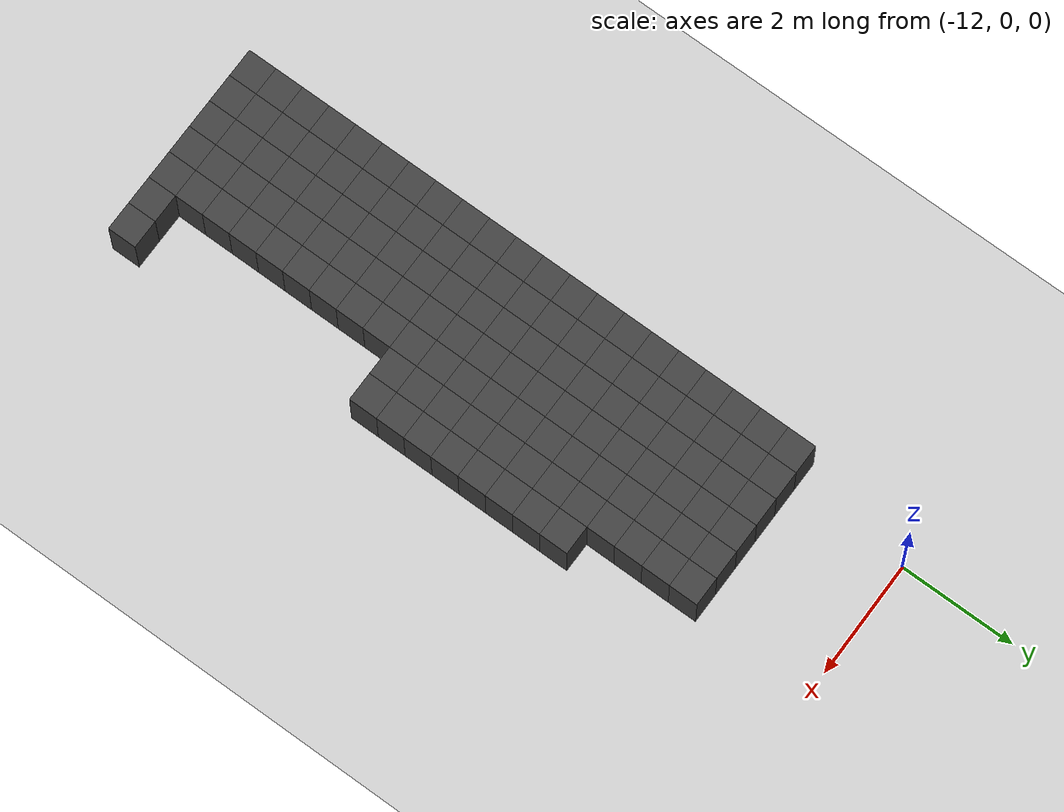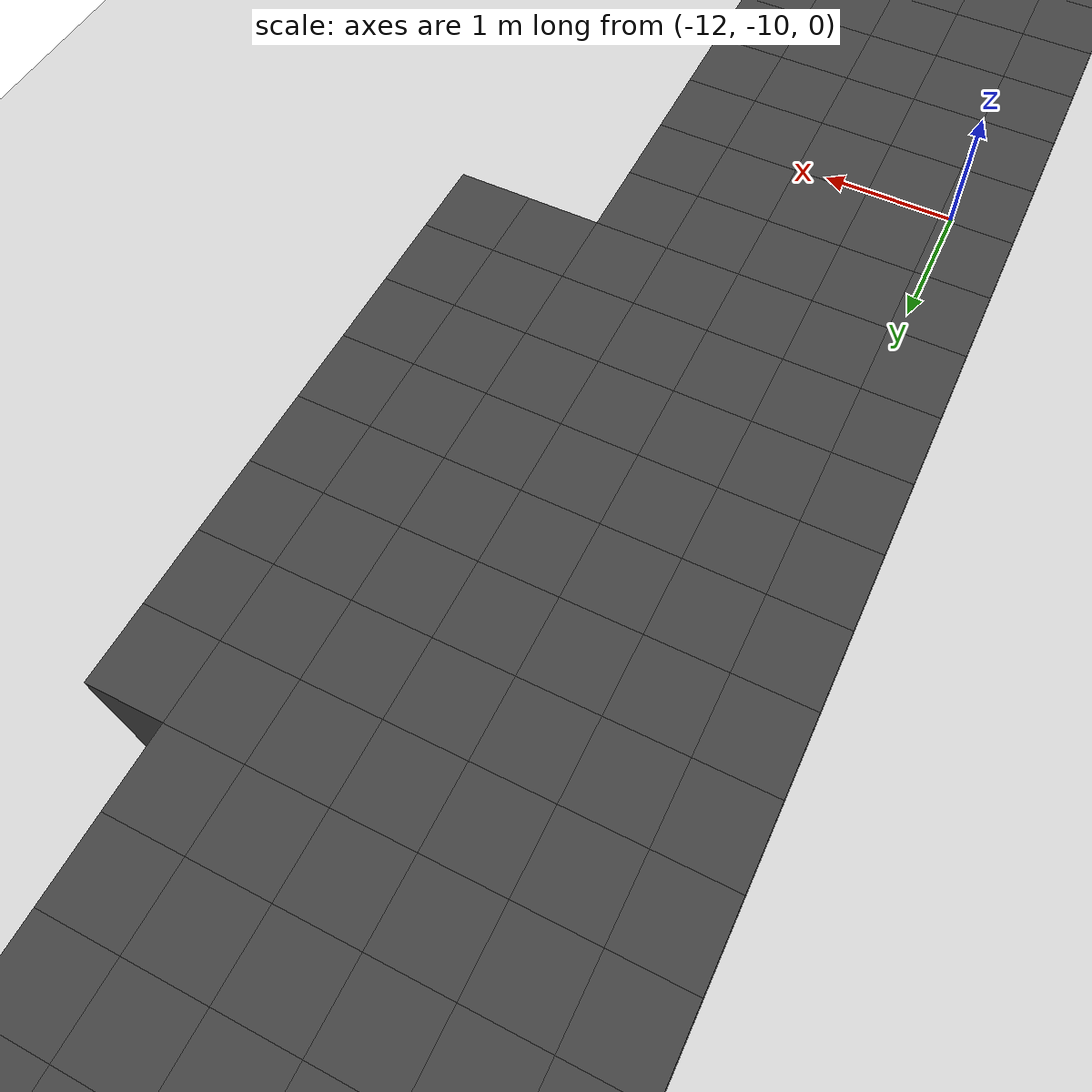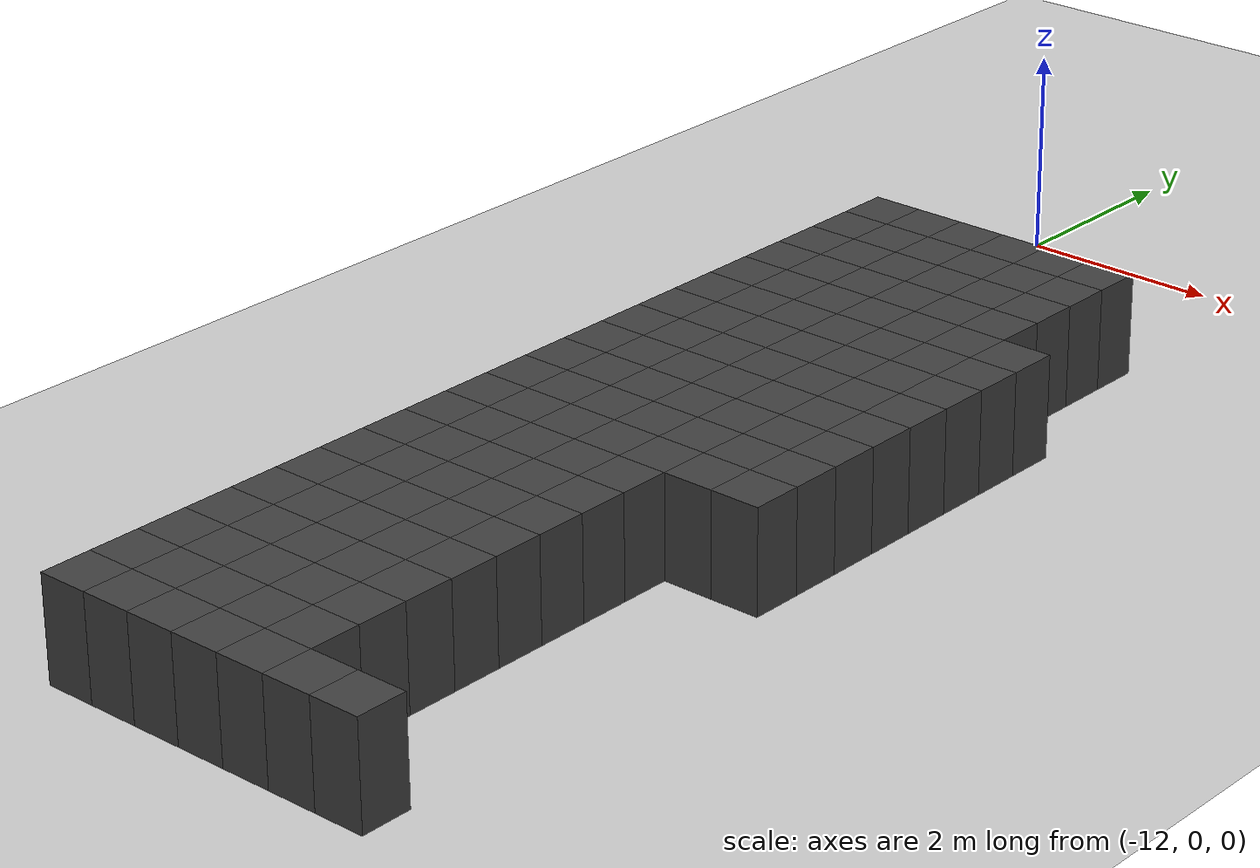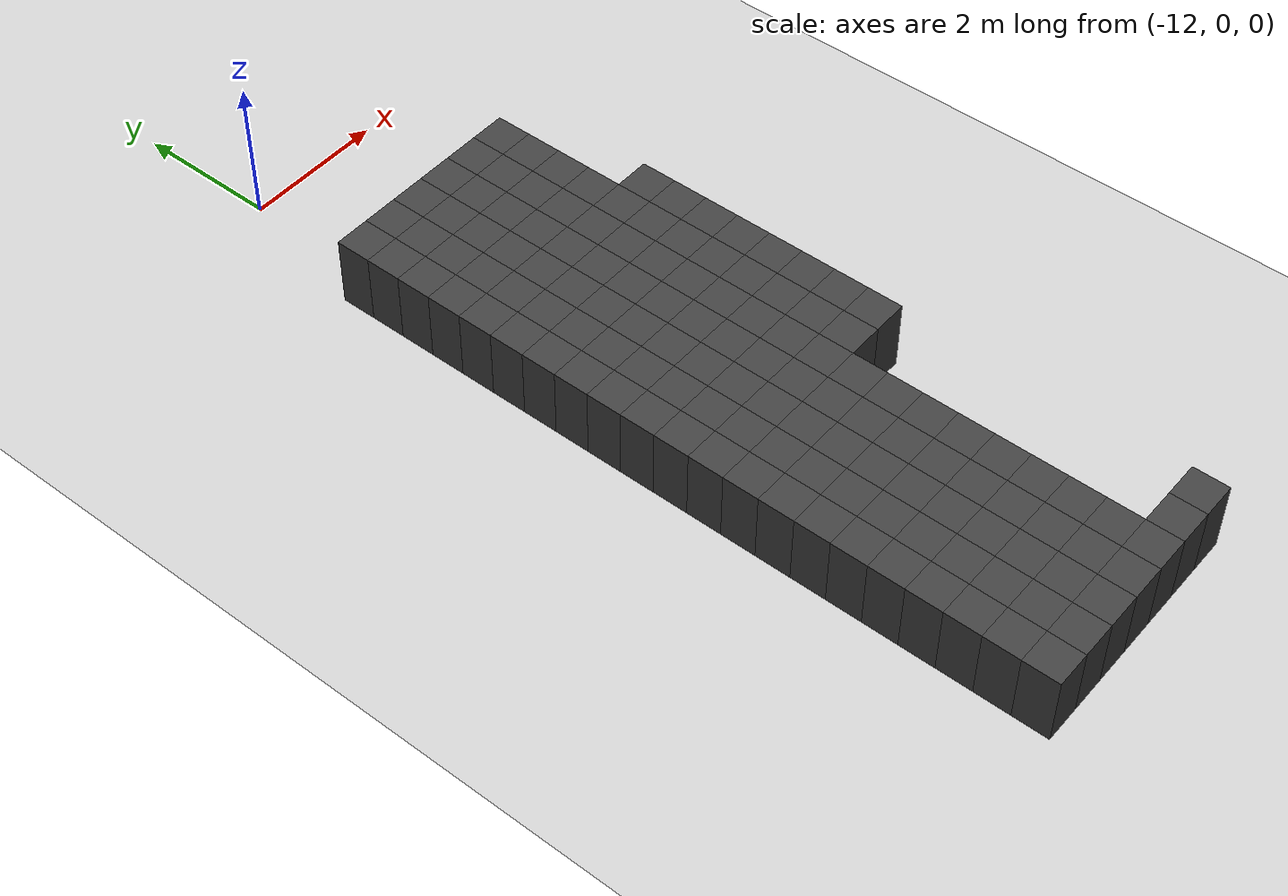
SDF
<sdf version="1.7">
 <world name="map_14494">
  <model name="ground_plane">
   <static>true</static>
   <link name="link">
    <collision name="collision">
     <geometry><plane><normal>0 0 1</normal><size>200 200</size></plane></geometry>
    </collision>
    <visual name="visual">
     <geometry><plane><normal>0 0 1</normal><size>200 200</size></plane></geometry>
     <material><ambient>0.8 0.8 0.8 1</ambient><diffuse>0.8 0.8 0.8 1</diffuse></material>
    </visual>
   </link>
  </model>
  <model name="maze_environment">
   <static>true</static>
   <link name="wall_1049">
    <pose>-12.250 -2.250 0.500 0 0 0</pose>
    <collision name="col"><geometry><box><size>0.5 0.5 1.0</size></box></geometry></collision>
    <visual name="vis">
     <geometry><box><size>0.5 0.5 1.0</size></box></geometry>
     <material><ambient>0.15 0.15 0.15 1</ambient><diffuse>0.25 0.25 0.25 1</diffuse></material>
    </visual>
   </link>
   <link name="wall_1050">
    <pose>-11.750 -2.250 0.500 0 0 0</pose>
    <collision name="col"><geometry><box><size>0.5 0.5 1.0</size></box></geometry></collision>
    <visual name="vis">
     <geometry><box><size>0.5 0.5 1.0</size></box></geometry>
     <material><ambient>0.15 0.15 0.15 1</ambient><diffuse>0.25 0.25 0.25 1</diffuse></material>
    </visual>
   </link>
   <link name="wall_1051">
    <pose>-11.250 -2.250 0.500 0 0 0</pose>
    <collision name="col"><geometry><box><size>0.5 0.5 1.0</size></box></geometry></collision>
    <visual name="vis">
     <geometry><box><size>0.5 0.5 1.0</size></box></geometry>
     <material><ambient>0.15 0.15 0.15 1</ambient><diffuse>0.25 0.25 0.25 1</diffuse></material>
    </visual>
   </link>
   <link name="wall_1052">
    <pose>-10.750 -2.250 0.500 0 0 0</pose>
    <collision name="col"><geometry><box><size>0.5 0.5 1.0</size></box></geometry></collision>
    <visual name="vis">
     <geometry><box><size>0.5 0.5 1.0</size></box></geometry>
     <material><ambient>0.15 0.15 0.15 1</ambient><diffuse>0.25 0.25 0.25 1</diffuse></material>
    </visual>
   </link>
   <link name="wall_1053">
    <pose>-10.250 -2.250 0.500 0 0 0</pose>
    <collision name="col"><geometry><box><size>0.5 0.5 1.0</size></box></geometry></collision>
    <visual name="vis">
     <geometry><box><size>0.5 0.5 1.0</size></box></geometry>
     <material><ambient>0.15 0.15 0.15 1</ambient><diffuse>0.25 0.25 0.25 1</diffuse></material>
    </visual>
   </link>
   <link name="wall_1054">
    <pose>-9.750 -2.250 0.500 0 0 0</pose>
    <collision name="col"><geometry><box><size>0.5 0.5 1.0</size></box></geometry></collision>
    <visual name="vis">
     <geometry><box><size>0.5 0.5 1.0</size></box></geometry>
     <material><ambient>0.15 0.15 0.15 1</ambient><diffuse>0.25 0.25 0.25 1</diffuse></material>
    </visual>
   </link>
   <link name="wall_1081">
    <pose>-12.250 -2.750 0.500 0 0 0</pose>
    <collision name="col"><geometry><box><size>0.5 0.5 1.0</size></box></geometry></collision>
    <visual name="vis">
     <geometry><box><size>0.5 0.5 1.0</size></box></geometry>
     <material><ambient>0.15 0.15 0.15 1</ambient><diffuse>0.25 0.25 0.25 1</diffuse></material>
    </visual>
   </link>
   <link name="wall_1082">
    <pose>-11.750 -2.750 0.500 0 0 0</pose>
    <collision name="col"><geometry><box><size>0.5 0.5 1.0</size></box></geometry></collision>
    <visual name="vis">
     <geometry><box><size>0.5 0.5 1.0</size></box></geometry>
     <material><ambient>0.15 0.15 0.15 1</ambient><diffuse>0.25 0.25 0.25 1</diffuse></material>
    </visual>
   </link>
   <link name="wall_1083">
    <pose>-11.250 -2.750 0.500 0 0 0</pose>
    <collision name="col"><geometry><box><size>0.5 0.5 1.0</size></box></geometry></collision>
    <visual name="vis">
     <geometry><box><size>0.5 0.5 1.0</size></box></geometry>
     <material><ambient>0.15 0.15 0.15 1</ambient><diffuse>0.25 0.25 0.25 1</diffuse></material>
    </visual>
   </link>
   <link name="wall_1084">
    <pose>-10.750 -2.750 0.500 0 0 0</pose>
    <collision name="col"><geometry><box><size>0.5 0.5 1.0</size></box></geometry></collision>
    <visual name="vis">
     <geometry><box><size>0.5 0.5 1.0</size></box></geometry>
     <material><ambient>0.15 0.15 0.15 1</ambient><diffuse>0.25 0.25 0.25 1</diffuse></material>
    </visual>
   </link>
   <link name="wall_1085">
    <pose>-10.250 -2.750 0.500 0 0 0</pose>
    <collision name="col"><geometry><box><size>0.5 0.5 1.0</size></box></geometry></collision>
    <visual name="vis">
     <geometry><box><size>0.5 0.5 1.0</size></box></geometry>
     <material><ambient>0.15 0.15 0.15 1</ambient><diffuse>0.25 0.25 0.25 1</diffuse></material>
    </visual>
   </link>
   <link name="wall_1086">
    <pose>-9.750 -2.750 0.500 0 0 0</pose>
    <collision name="col"><geometry><box><size>0.5 0.5 1.0</size></box></geometry></collision>
    <visual name="vis">
     <geometry><box><size>0.5 0.5 1.0</size></box></geometry>
     <material><ambient>0.15 0.15 0.15 1</ambient><diffuse>0.25 0.25 0.25 1</diffuse></material>
    </visual>
   </link>
   <link name="wall_1107">
    <pose>-12.250 -3.250 0.500 0 0 0</pose>
    <collision name="col"><geometry><box><size>0.5 0.5 1.0</size></box></geometry></collision>
    <visual name="vis">
     <geometry><box><size>0.5 0.5 1.0</size></box></geometry>
     <material><ambient>0.15 0.15 0.15 1</ambient><diffuse>0.25 0.25 0.25 1</diffuse></material>
    </visual>
   </link>
   <link name="wall_1108">
    <pose>-11.750 -3.250 0.500 0 0 0</pose>
    <collision name="col"><geometry><box><size>0.5 0.5 1.0</size></box></geometry></collision>
    <visual name="vis">
     <geometry><box><size>0.5 0.5 1.0</size></box></geometry>
     <material><ambient>0.15 0.15 0.15 1</ambient><diffuse>0.25 0.25 0.25 1</diffuse></material>
    </visual>
   </link>
   <link name="wall_1109">
    <pose>-11.250 -3.250 0.500 0 0 0</pose>
    <collision name="col"><geometry><box><size>0.5 0.5 1.0</size></box></geometry></collision>
    <visual name="vis">
     <geometry><box><size>0.5 0.5 1.0</size></box></geometry>
     <material><ambient>0.15 0.15 0.15 1</ambient><diffuse>0.25 0.25 0.25 1</diffuse></material>
    </visual>
   </link>
   <link name="wall_1110">
    <pose>-10.750 -3.250 0.500 0 0 0</pose>
    <collision name="col"><geometry><box><size>0.5 0.5 1.0</size></box></geometry></collision>
    <visual name="vis">
     <geometry><box><size>0.5 0.5 1.0</size></box></geometry>
     <material><ambient>0.15 0.15 0.15 1</ambient><diffuse>0.25 0.25 0.25 1</diffuse></material>
    </visual>
   </link>
   <link name="wall_1111">
    <pose>-10.250 -3.250 0.500 0 0 0</pose>
    <collision name="col"><geometry><box><size>0.5 0.5 1.0</size></box></geometry></collision>
    <visual name="vis">
     <geometry><box><size>0.5 0.5 1.0</size></box></geometry>
     <material><ambient>0.15 0.15 0.15 1</ambient><diffuse>0.25 0.25 0.25 1</diffuse></material>
    </visual>
   </link>
   <link name="wall_1112">
    <pose>-9.750 -3.250 0.500 0 0 0</pose>
    <collision name="col"><geometry><box><size>0.5 0.5 1.0</size></box></geometry></collision>
    <visual name="vis">
     <geometry><box><size>0.5 0.5 1.0</size></box></geometry>
     <material><ambient>0.15 0.15 0.15 1</ambient><diffuse>0.25 0.25 0.25 1</diffuse></material>
    </visual>
   </link>
   <link name="wall_1134">
    <pose>-12.250 -3.750 0.500 0 0 0</pose>
    <collision name="col"><geometry><box><size>0.5 0.5 1.0</size></box></geometry></collision>
    <visual name="vis">
     <geometry><box><size>0.5 0.5 1.0</size></box></geometry>
     <material><ambient>0.15 0.15 0.15 1</ambient><diffuse>0.25 0.25 0.25 1</diffuse></material>
    </visual>
   </link>
   <link name="wall_1135">
    <pose>-11.750 -3.750 0.500 0 0 0</pose>
    <collision name="col"><geometry><box><size>0.5 0.5 1.0</size></box></geometry></collision>
    <visual name="vis">
     <geometry><box><size>0.5 0.5 1.0</size></box></geometry>
     <material><ambient>0.15 0.15 0.15 1</ambient><diffuse>0.25 0.25 0.25 1</diffuse></material>
    </visual>
   </link>
   <link name="wall_1136">
    <pose>-11.250 -3.750 0.500 0 0 0</pose>
    <collision name="col"><geometry><box><size>0.5 0.5 1.0</size></box></geometry></collision>
    <visual name="vis">
     <geometry><box><size>0.5 0.5 1.0</size></box></geometry>
     <material><ambient>0.15 0.15 0.15 1</ambient><diffuse>0.25 0.25 0.25 1</diffuse></material>
    </visual>
   </link>
   <link name="wall_1137">
    <pose>-10.750 -3.750 0.500 0 0 0</pose>
    <collision name="col"><geometry><box><size>0.5 0.5 1.0</size></box></geometry></collision>
    <visual name="vis">
     <geometry><box><size>0.5 0.5 1.0</size></box></geometry>
     <material><ambient>0.15 0.15 0.15 1</ambient><diffuse>0.25 0.25 0.25 1</diffuse></material>
    </visual>
   </link>
   <link name="wall_1138">
    <pose>-10.250 -3.750 0.500 0 0 0</pose>
    <collision name="col"><geometry><box><size>0.5 0.5 1.0</size></box></geometry></collision>
    <visual name="vis">
     <geometry><box><size>0.5 0.5 1.0</size></box></geometry>
     <material><ambient>0.15 0.15 0.15 1</ambient><diffuse>0.25 0.25 0.25 1</diffuse></material>
    </visual>
   </link>
   <link name="wall_1139">
    <pose>-9.750 -3.750 0.500 0 0 0</pose>
    <collision name="col"><geometry><box><size>0.5 0.5 1.0</size></box></geometry></collision>
    <visual name="vis">
     <geometry><box><size>0.5 0.5 1.0</size></box></geometry>
     <material><ambient>0.15 0.15 0.15 1</ambient><diffuse>0.25 0.25 0.25 1</diffuse></material>
    </visual>
   </link>
   <link name="wall_1161">
    <pose>-12.250 -4.250 0.500 0 0 0</pose>
    <collision name="col"><geometry><box><size>0.5 0.5 1.0</size></box></geometry></collision>
    <visual name="vis">
     <geometry><box><size>0.5 0.5 1.0</size></box></geometry>
     <material><ambient>0.15 0.15 0.15 1</ambient><diffuse>0.25 0.25 0.25 1</diffuse></material>
    </visual>
   </link>
   <link name="wall_1162">
    <pose>-11.750 -4.250 0.500 0 0 0</pose>
    <collision name="col"><geometry><box><size>0.5 0.5 1.0</size></box></geometry></collision>
    <visual name="vis">
     <geometry><box><size>0.5 0.5 1.0</size></box></geometry>
     <material><ambient>0.15 0.15 0.15 1</ambient><diffuse>0.25 0.25 0.25 1</diffuse></material>
    </visual>
   </link>
   <link name="wall_1163">
    <pose>-11.250 -4.250 0.500 0 0 0</pose>
    <collision name="col"><geometry><box><size>0.5 0.5 1.0</size></box></geometry></collision>
    <visual name="vis">
     <geometry><box><size>0.5 0.5 1.0</size></box></geometry>
     <material><ambient>0.15 0.15 0.15 1</ambient><diffuse>0.25 0.25 0.25 1</diffuse></material>
    </visual>
   </link>
   <link name="wall_1164">
    <pose>-10.750 -4.250 0.500 0 0 0</pose>
    <collision name="col"><geometry><box><size>0.5 0.5 1.0</size></box></geometry></collision>
    <visual name="vis">
     <geometry><box><size>0.5 0.5 1.0</size></box></geometry>
     <material><ambient>0.15 0.15 0.15 1</ambient><diffuse>0.25 0.25 0.25 1</diffuse></material>
    </visual>
   </link>
   <link name="wall_1165">
    <pose>-10.250 -4.250 0.500 0 0 0</pose>
    <collision name="col"><geometry><box><size>0.5 0.5 1.0</size></box></geometry></collision>
    <visual name="vis">
     <geometry><box><size>0.5 0.5 1.0</size></box></geometry>
     <material><ambient>0.15 0.15 0.15 1</ambient><diffuse>0.25 0.25 0.25 1</diffuse></material>
    </visual>
   </link>
   <link name="wall_1166">
    <pose>-9.750 -4.250 0.500 0 0 0</pose>
    <collision name="col"><geometry><box><size>0.5 0.5 1.0</size></box></geometry></collision>
    <visual name="vis">
     <geometry><box><size>0.5 0.5 1.0</size></box></geometry>
     <material><ambient>0.15 0.15 0.15 1</ambient><diffuse>0.25 0.25 0.25 1</diffuse></material>
    </visual>
   </link>
   <link name="wall_1167">
    <pose>-9.250 -4.250 0.500 0 0 0</pose>
    <collision name="col"><geometry><box><size>0.5 0.5 1.0</size></box></geometry></collision>
    <visual name="vis">
     <geometry><box><size>0.5 0.5 1.0</size></box></geometry>
     <material><ambient>0.15 0.15 0.15 1</ambient><diffuse>0.25 0.25 0.25 1</diffuse></material>
    </visual>
   </link>
   <link name="wall_1188">
    <pose>-12.250 -4.750 0.500 0 0 0</pose>
    <collision name="col"><geometry><box><size>0.5 0.5 1.0</size></box></geometry></collision>
    <visual name="vis">
     <geometry><box><size>0.5 0.5 1.0</size></box></geometry>
     <material><ambient>0.15 0.15 0.15 1</ambient><diffuse>0.25 0.25 0.25 1</diffuse></material>
    </visual>
   </link>
   <link name="wall_1189">
    <pose>-11.750 -4.750 0.500 0 0 0</pose>
    <collision name="col"><geometry><box><size>0.5 0.5 1.0</size></box></geometry></collision>
    <visual name="vis">
     <geometry><box><size>0.5 0.5 1.0</size></box></geometry>
     <material><ambient>0.15 0.15 0.15 1</ambient><diffuse>0.25 0.25 0.25 1</diffuse></material>
    </visual>
   </link>
   <link name="wall_1190">
    <pose>-11.250 -4.750 0.500 0 0 0</pose>
    <collision name="col"><geometry><box><size>0.5 0.5 1.0</size></box></geometry></collision>
    <visual name="vis">
     <geometry><box><size>0.5 0.5 1.0</size></box></geometry>
     <material><ambient>0.15 0.15 0.15 1</ambient><diffuse>0.25 0.25 0.25 1</diffuse></material>
    </visual>
   </link>
   <link name="wall_1191">
    <pose>-10.750 -4.750 0.500 0 0 0</pose>
    <collision name="col"><geometry><box><size>0.5 0.5 1.0</size></box></geometry></collision>
    <visual name="vis">
     <geometry><box><size>0.5 0.5 1.0</size></box></geometry>
     <material><ambient>0.15 0.15 0.15 1</ambient><diffuse>0.25 0.25 0.25 1</diffuse></material>
    </visual>
   </link>
   <link name="wall_1192">
    <pose>-10.250 -4.750 0.500 0 0 0</pose>
    <collision name="col"><geometry><box><size>0.5 0.5 1.0</size></box></geometry></collision>
    <visual name="vis">
     <geometry><box><size>0.5 0.5 1.0</size></box></geometry>
     <material><ambient>0.15 0.15 0.15 1</ambient><diffuse>0.25 0.25 0.25 1</diffuse></material>
    </visual>
   </link>
   <link name="wall_1193">
    <pose>-9.750 -4.750 0.500 0 0 0</pose>
    <collision name="col"><geometry><box><size>0.5 0.5 1.0</size></box></geometry></collision>
    <visual name="vis">
     <geometry><box><size>0.5 0.5 1.0</size></box></geometry>
     <material><ambient>0.15 0.15 0.15 1</ambient><diffuse>0.25 0.25 0.25 1</diffuse></material>
    </visual>
   </link>
   <link name="wall_1194">
    <pose>-9.250 -4.750 0.500 0 0 0</pose>
    <collision name="col"><geometry><box><size>0.5 0.5 1.0</size></box></geometry></collision>
    <visual name="vis">
     <geometry><box><size>0.5 0.5 1.0</size></box></geometry>
     <material><ambient>0.15 0.15 0.15 1</ambient><diffuse>0.25 0.25 0.25 1</diffuse></material>
    </visual>
   </link>
   <link name="wall_1225">
    <pose>-12.250 -5.250 0.500 0 0 0</pose>
    <collision name="col"><geometry><box><size>0.5 0.5 1.0</size></box></geometry></collision>
    <visual name="vis">
     <geometry><box><size>0.5 0.5 1.0</size></box></geometry>
     <material><ambient>0.15 0.15 0.15 1</ambient><diffuse>0.25 0.25 0.25 1</diffuse></material>
    </visual>
   </link>
   <link name="wall_1226">
    <pose>-11.750 -5.250 0.500 0 0 0</pose>
    <collision name="col"><geometry><box><size>0.5 0.5 1.0</size></box></geometry></collision>
    <visual name="vis">
     <geometry><box><size>0.5 0.5 1.0</size></box></geometry>
     <material><ambient>0.15 0.15 0.15 1</ambient><diffuse>0.25 0.25 0.25 1</diffuse></material>
    </visual>
   </link>
   <link name="wall_1227">
    <pose>-11.250 -5.250 0.500 0 0 0</pose>
    <collision name="col"><geometry><box><size>0.5 0.5 1.0</size></box></geometry></collision>
    <visual name="vis">
     <geometry><box><size>0.5 0.5 1.0</size></box></geometry>
     <material><ambient>0.15 0.15 0.15 1</ambient><diffuse>0.25 0.25 0.25 1</diffuse></material>
    </visual>
   </link>
   <link name="wall_1228">
    <pose>-10.750 -5.250 0.500 0 0 0</pose>
    <collision name="col"><geometry><box><size>0.5 0.5 1.0</size></box></geometry></collision>
    <visual name="vis">
     <geometry><box><size>0.5 0.5 1.0</size></box></geometry>
     <material><ambient>0.15 0.15 0.15 1</ambient><diffuse>0.25 0.25 0.25 1</diffuse></material>
    </visual>
   </link>
   <link name="wall_1229">
    <pose>-10.250 -5.250 0.500 0 0 0</pose>
    <collision name="col"><geometry><box><size>0.5 0.5 1.0</size></box></geometry></collision>
    <visual name="vis">
     <geometry><box><size>0.5 0.5 1.0</size></box></geometry>
     <material><ambient>0.15 0.15 0.15 1</ambient><diffuse>0.25 0.25 0.25 1</diffuse></material>
    </visual>
   </link>
   <link name="wall_1230">
    <pose>-9.750 -5.250 0.500 0 0 0</pose>
    <collision name="col"><geometry><box><size>0.5 0.5 1.0</size></box></geometry></collision>
    <visual name="vis">
     <geometry><box><size>0.5 0.5 1.0</size></box></geometry>
     <material><ambient>0.15 0.15 0.15 1</ambient><diffuse>0.25 0.25 0.25 1</diffuse></material>
    </visual>
   </link>
   <link name="wall_1231">
    <pose>-9.250 -5.250 0.500 0 0 0</pose>
    <collision name="col"><geometry><box><size>0.5 0.5 1.0</size></box></geometry></collision>
    <visual name="vis">
     <geometry><box><size>0.5 0.5 1.0</size></box></geometry>
     <material><ambient>0.15 0.15 0.15 1</ambient><diffuse>0.25 0.25 0.25 1</diffuse></material>
    </visual>
   </link>
   <link name="wall_1262">
    <pose>-12.250 -5.750 0.500 0 0 0</pose>
    <collision name="col"><geometry><box><size>0.5 0.5 1.0</size></box></geometry></collision>
    <visual name="vis">
     <geometry><box><size>0.5 0.5 1.0</size></box></geometry>
     <material><ambient>0.15 0.15 0.15 1</ambient><diffuse>0.25 0.25 0.25 1</diffuse></material>
    </visual>
   </link>
   <link name="wall_1263">
    <pose>-11.750 -5.750 0.500 0 0 0</pose>
    <collision name="col"><geometry><box><size>0.5 0.5 1.0</size></box></geometry></collision>
    <visual name="vis">
     <geometry><box><size>0.5 0.5 1.0</size></box></geometry>
     <material><ambient>0.15 0.15 0.15 1</ambient><diffuse>0.25 0.25 0.25 1</diffuse></material>
    </visual>
   </link>
   <link name="wall_1264">
    <pose>-11.250 -5.750 0.500 0 0 0</pose>
    <collision name="col"><geometry><box><size>0.5 0.5 1.0</size></box></geometry></collision>
    <visual name="vis">
     <geometry><box><size>0.5 0.5 1.0</size></box></geometry>
     <material><ambient>0.15 0.15 0.15 1</ambient><diffuse>0.25 0.25 0.25 1</diffuse></material>
    </visual>
   </link>
   <link name="wall_1265">
    <pose>-10.750 -5.750 0.500 0 0 0</pose>
    <collision name="col"><geometry><box><size>0.5 0.5 1.0</size></box></geometry></collision>
    <visual name="vis">
     <geometry><box><size>0.5 0.5 1.0</size></box></geometry>
     <material><ambient>0.15 0.15 0.15 1</ambient><diffuse>0.25 0.25 0.25 1</diffuse></material>
    </visual>
   </link>
   <link name="wall_1266">
    <pose>-10.250 -5.750 0.500 0 0 0</pose>
    <collision name="col"><geometry><box><size>0.5 0.5 1.0</size></box></geometry></collision>
    <visual name="vis">
     <geometry><box><size>0.5 0.5 1.0</size></box></geometry>
     <material><ambient>0.15 0.15 0.15 1</ambient><diffuse>0.25 0.25 0.25 1</diffuse></material>
    </visual>
   </link>
   <link name="wall_1267">
    <pose>-9.750 -5.750 0.500 0 0 0</pose>
    <collision name="col"><geometry><box><size>0.5 0.5 1.0</size></box></geometry></collision>
    <visual name="vis">
     <geometry><box><size>0.5 0.5 1.0</size></box></geometry>
     <material><ambient>0.15 0.15 0.15 1</ambient><diffuse>0.25 0.25 0.25 1</diffuse></material>
    </visual>
   </link>
   <link name="wall_1268">
    <pose>-9.250 -5.750 0.500 0 0 0</pose>
    <collision name="col"><geometry><box><size>0.5 0.5 1.0</size></box></geometry></collision>
    <visual name="vis">
     <geometry><box><size>0.5 0.5 1.0</size></box></geometry>
     <material><ambient>0.15 0.15 0.15 1</ambient><diffuse>0.25 0.25 0.25 1</diffuse></material>
    </visual>
   </link>
   <link name="wall_1309">
    <pose>-12.250 -6.250 0.500 0 0 0</pose>
    <collision name="col"><geometry><box><size>0.5 0.5 1.0</size></box></geometry></collision>
    <visual name="vis">
     <geometry><box><size>0.5 0.5 1.0</size></box></geometry>
     <material><ambient>0.15 0.15 0.15 1</ambient><diffuse>0.25 0.25 0.25 1</diffuse></material>
    </visual>
   </link>
   <link name="wall_1310">
    <pose>-11.750 -6.250 0.500 0 0 0</pose>
    <collision name="col"><geometry><box><size>0.5 0.5 1.0</size></box></geometry></collision>
    <visual name="vis">
     <geometry><box><size>0.5 0.5 1.0</size></box></geometry>
     <material><ambient>0.15 0.15 0.15 1</ambient><diffuse>0.25 0.25 0.25 1</diffuse></material>
    </visual>
   </link>
   <link name="wall_1311">
    <pose>-11.250 -6.250 0.500 0 0 0</pose>
    <collision name="col"><geometry><box><size>0.5 0.5 1.0</size></box></geometry></collision>
    <visual name="vis">
     <geometry><box><size>0.5 0.5 1.0</size></box></geometry>
     <material><ambient>0.15 0.15 0.15 1</ambient><diffuse>0.25 0.25 0.25 1</diffuse></material>
    </visual>
   </link>
   <link name="wall_1312">
    <pose>-10.750 -6.250 0.500 0 0 0</pose>
    <collision name="col"><geometry><box><size>0.5 0.5 1.0</size></box></geometry></collision>
    <visual name="vis">
     <geometry><box><size>0.5 0.5 1.0</size></box></geometry>
     <material><ambient>0.15 0.15 0.15 1</ambient><diffuse>0.25 0.25 0.25 1</diffuse></material>
    </visual>
   </link>
   <link name="wall_1313">
    <pose>-10.250 -6.250 0.500 0 0 0</pose>
    <collision name="col"><geometry><box><size>0.5 0.5 1.0</size></box></geometry></collision>
    <visual name="vis">
     <geometry><box><size>0.5 0.5 1.0</size></box></geometry>
     <material><ambient>0.15 0.15 0.15 1</ambient><diffuse>0.25 0.25 0.25 1</diffuse></material>
    </visual>
   </link>
   <link name="wall_1314">
    <pose>-9.750 -6.250 0.500 0 0 0</pose>
    <collision name="col"><geometry><box><size>0.5 0.5 1.0</size></box></geometry></collision>
    <visual name="vis">
     <geometry><box><size>0.5 0.5 1.0</size></box></geometry>
     <material><ambient>0.15 0.15 0.15 1</ambient><diffuse>0.25 0.25 0.25 1</diffuse></material>
    </visual>
   </link>
   <link name="wall_1315">
    <pose>-9.250 -6.250 0.500 0 0 0</pose>
    <collision name="col"><geometry><box><size>0.5 0.5 1.0</size></box></geometry></collision>
    <visual name="vis">
     <geometry><box><size>0.5 0.5 1.0</size></box></geometry>
     <material><ambient>0.15 0.15 0.15 1</ambient><diffuse>0.25 0.25 0.25 1</diffuse></material>
    </visual>
   </link>
   <link name="wall_1356">
    <pose>-12.250 -6.750 0.500 0 0 0</pose>
    <collision name="col"><geometry><box><size>0.5 0.5 1.0</size></box></geometry></collision>
    <visual name="vis">
     <geometry><box><size>0.5 0.5 1.0</size></box></geometry>
     <material><ambient>0.15 0.15 0.15 1</ambient><diffuse>0.25 0.25 0.25 1</diffuse></material>
    </visual>
   </link>
   <link name="wall_1357">
    <pose>-11.750 -6.750 0.500 0 0 0</pose>
    <collision name="col"><geometry><box><size>0.5 0.5 1.0</size></box></geometry></collision>
    <visual name="vis">
     <geometry><box><size>0.5 0.5 1.0</size></box></geometry>
     <material><ambient>0.15 0.15 0.15 1</ambient><diffuse>0.25 0.25 0.25 1</diffuse></material>
    </visual>
   </link>
   <link name="wall_1358">
    <pose>-11.250 -6.750 0.500 0 0 0</pose>
    <collision name="col"><geometry><box><size>0.5 0.5 1.0</size></box></geometry></collision>
    <visual name="vis">
     <geometry><box><size>0.5 0.5 1.0</size></box></geometry>
     <material><ambient>0.15 0.15 0.15 1</ambient><diffuse>0.25 0.25 0.25 1</diffuse></material>
    </visual>
   </link>
   <link name="wall_1359">
    <pose>-10.750 -6.750 0.500 0 0 0</pose>
    <collision name="col"><geometry><box><size>0.5 0.5 1.0</size></box></geometry></collision>
    <visual name="vis">
     <geometry><box><size>0.5 0.5 1.0</size></box></geometry>
     <material><ambient>0.15 0.15 0.15 1</ambient><diffuse>0.25 0.25 0.25 1</diffuse></material>
    </visual>
   </link>
   <link name="wall_1360">
    <pose>-10.250 -6.750 0.500 0 0 0</pose>
    <collision name="col"><geometry><box><size>0.5 0.5 1.0</size></box></geometry></collision>
    <visual name="vis">
     <geometry><box><size>0.5 0.5 1.0</size></box></geometry>
     <material><ambient>0.15 0.15 0.15 1</ambient><diffuse>0.25 0.25 0.25 1</diffuse></material>
    </visual>
   </link>
   <link name="wall_1361">
    <pose>-9.750 -6.750 0.500 0 0 0</pose>
    <collision name="col"><geometry><box><size>0.5 0.5 1.0</size></box></geometry></collision>
    <visual name="vis">
     <geometry><box><size>0.5 0.5 1.0</size></box></geometry>
     <material><ambient>0.15 0.15 0.15 1</ambient><diffuse>0.25 0.25 0.25 1</diffuse></material>
    </visual>
   </link>
   <link name="wall_1362">
    <pose>-9.250 -6.750 0.500 0 0 0</pose>
    <collision name="col"><geometry><box><size>0.5 0.5 1.0</size></box></geometry></collision>
    <visual name="vis">
     <geometry><box><size>0.5 0.5 1.0</size></box></geometry>
     <material><ambient>0.15 0.15 0.15 1</ambient><diffuse>0.25 0.25 0.25 1</diffuse></material>
    </visual>
   </link>
   <link name="wall_1403">
    <pose>-12.250 -7.250 0.500 0 0 0</pose>
    <collision name="col"><geometry><box><size>0.5 0.5 1.0</size></box></geometry></collision>
    <visual name="vis">
     <geometry><box><size>0.5 0.5 1.0</size></box></geometry>
     <material><ambient>0.15 0.15 0.15 1</ambient><diffuse>0.25 0.25 0.25 1</diffuse></material>
    </visual>
   </link>
   <link name="wall_1404">
    <pose>-11.750 -7.250 0.500 0 0 0</pose>
    <collision name="col"><geometry><box><size>0.5 0.5 1.0</size></box></geometry></collision>
    <visual name="vis">
     <geometry><box><size>0.5 0.5 1.0</size></box></geometry>
     <material><ambient>0.15 0.15 0.15 1</ambient><diffuse>0.25 0.25 0.25 1</diffuse></material>
    </visual>
   </link>
   <link name="wall_1405">
    <pose>-11.250 -7.250 0.500 0 0 0</pose>
    <collision name="col"><geometry><box><size>0.5 0.5 1.0</size></box></geometry></collision>
    <visual name="vis">
     <geometry><box><size>0.5 0.5 1.0</size></box></geometry>
     <material><ambient>0.15 0.15 0.15 1</ambient><diffuse>0.25 0.25 0.25 1</diffuse></material>
    </visual>
   </link>
   <link name="wall_1406">
    <pose>-10.750 -7.250 0.500 0 0 0</pose>
    <collision name="col"><geometry><box><size>0.5 0.5 1.0</size></box></geometry></collision>
    <visual name="vis">
     <geometry><box><size>0.5 0.5 1.0</size></box></geometry>
     <material><ambient>0.15 0.15 0.15 1</ambient><diffuse>0.25 0.25 0.25 1</diffuse></material>
    </visual>
   </link>
   <link name="wall_1407">
    <pose>-10.250 -7.250 0.500 0 0 0</pose>
    <collision name="col"><geometry><box><size>0.5 0.5 1.0</size></box></geometry></collision>
    <visual name="vis">
     <geometry><box><size>0.5 0.5 1.0</size></box></geometry>
     <material><ambient>0.15 0.15 0.15 1</ambient><diffuse>0.25 0.25 0.25 1</diffuse></material>
    </visual>
   </link>
   <link name="wall_1408">
    <pose>-9.750 -7.250 0.500 0 0 0</pose>
    <collision name="col"><geometry><box><size>0.5 0.5 1.0</size></box></geometry></collision>
    <visual name="vis">
     <geometry><box><size>0.5 0.5 1.0</size></box></geometry>
     <material><ambient>0.15 0.15 0.15 1</ambient><diffuse>0.25 0.25 0.25 1</diffuse></material>
    </visual>
   </link>
   <link name="wall_1409">
    <pose>-9.250 -7.250 0.500 0 0 0</pose>
    <collision name="col"><geometry><box><size>0.5 0.5 1.0</size></box></geometry></collision>
    <visual name="vis">
     <geometry><box><size>0.5 0.5 1.0</size></box></geometry>
     <material><ambient>0.15 0.15 0.15 1</ambient><diffuse>0.25 0.25 0.25 1</diffuse></material>
    </visual>
   </link>
   <link name="wall_1444">
    <pose>-12.250 -7.750 0.500 0 0 0</pose>
    <collision name="col"><geometry><box><size>0.5 0.5 1.0</size></box></geometry></collision>
    <visual name="vis">
     <geometry><box><size>0.5 0.5 1.0</size></box></geometry>
     <material><ambient>0.15 0.15 0.15 1</ambient><diffuse>0.25 0.25 0.25 1</diffuse></material>
    </visual>
   </link>
   <link name="wall_1445">
    <pose>-11.750 -7.750 0.500 0 0 0</pose>
    <collision name="col"><geometry><box><size>0.5 0.5 1.0</size></box></geometry></collision>
    <visual name="vis">
     <geometry><box><size>0.5 0.5 1.0</size></box></geometry>
     <material><ambient>0.15 0.15 0.15 1</ambient><diffuse>0.25 0.25 0.25 1</diffuse></material>
    </visual>
   </link>
   <link name="wall_1446">
    <pose>-11.250 -7.750 0.500 0 0 0</pose>
    <collision name="col"><geometry><box><size>0.5 0.5 1.0</size></box></geometry></collision>
    <visual name="vis">
     <geometry><box><size>0.5 0.5 1.0</size></box></geometry>
     <material><ambient>0.15 0.15 0.15 1</ambient><diffuse>0.25 0.25 0.25 1</diffuse></material>
    </visual>
   </link>
   <link name="wall_1447">
    <pose>-10.750 -7.750 0.500 0 0 0</pose>
    <collision name="col"><geometry><box><size>0.5 0.5 1.0</size></box></geometry></collision>
    <visual name="vis">
     <geometry><box><size>0.5 0.5 1.0</size></box></geometry>
     <material><ambient>0.15 0.15 0.15 1</ambient><diffuse>0.25 0.25 0.25 1</diffuse></material>
    </visual>
   </link>
   <link name="wall_1448">
    <pose>-10.250 -7.750 0.500 0 0 0</pose>
    <collision name="col"><geometry><box><size>0.5 0.5 1.0</size></box></geometry></collision>
    <visual name="vis">
     <geometry><box><size>0.5 0.5 1.0</size></box></geometry>
     <material><ambient>0.15 0.15 0.15 1</ambient><diffuse>0.25 0.25 0.25 1</diffuse></material>
    </visual>
   </link>
   <link name="wall_1449">
    <pose>-9.750 -7.750 0.500 0 0 0</pose>
    <collision name="col"><geometry><box><size>0.5 0.5 1.0</size></box></geometry></collision>
    <visual name="vis">
     <geometry><box><size>0.5 0.5 1.0</size></box></geometry>
     <material><ambient>0.15 0.15 0.15 1</ambient><diffuse>0.25 0.25 0.25 1</diffuse></material>
    </visual>
   </link>
   <link name="wall_1450">
    <pose>-9.250 -7.750 0.500 0 0 0</pose>
    <collision name="col"><geometry><box><size>0.5 0.5 1.0</size></box></geometry></collision>
    <visual name="vis">
     <geometry><box><size>0.5 0.5 1.0</size></box></geometry>
     <material><ambient>0.15 0.15 0.15 1</ambient><diffuse>0.25 0.25 0.25 1</diffuse></material>
    </visual>
   </link>
   <link name="wall_1485">
    <pose>-12.250 -8.250 0.500 0 0 0</pose>
    <collision name="col"><geometry><box><size>0.5 0.5 1.0</size></box></geometry></collision>
    <visual name="vis">
     <geometry><box><size>0.5 0.5 1.0</size></box></geometry>
     <material><ambient>0.15 0.15 0.15 1</ambient><diffuse>0.25 0.25 0.25 1</diffuse></material>
    </visual>
   </link>
   <link name="wall_1486">
    <pose>-11.750 -8.250 0.500 0 0 0</pose>
    <collision name="col"><geometry><box><size>0.5 0.5 1.0</size></box></geometry></collision>
    <visual name="vis">
     <geometry><box><size>0.5 0.5 1.0</size></box></geometry>
     <material><ambient>0.15 0.15 0.15 1</ambient><diffuse>0.25 0.25 0.25 1</diffuse></material>
    </visual>
   </link>
   <link name="wall_1487">
    <pose>-11.250 -8.250 0.500 0 0 0</pose>
    <collision name="col"><geometry><box><size>0.5 0.5 1.0</size></box></geometry></collision>
    <visual name="vis">
     <geometry><box><size>0.5 0.5 1.0</size></box></geometry>
     <material><ambient>0.15 0.15 0.15 1</ambient><diffuse>0.25 0.25 0.25 1</diffuse></material>
    </visual>
   </link>
   <link name="wall_1488">
    <pose>-10.750 -8.250 0.500 0 0 0</pose>
    <collision name="col"><geometry><box><size>0.5 0.5 1.0</size></box></geometry></collision>
    <visual name="vis">
     <geometry><box><size>0.5 0.5 1.0</size></box></geometry>
     <material><ambient>0.15 0.15 0.15 1</ambient><diffuse>0.25 0.25 0.25 1</diffuse></material>
    </visual>
   </link>
   <link name="wall_1489">
    <pose>-10.250 -8.250 0.500 0 0 0</pose>
    <collision name="col"><geometry><box><size>0.5 0.5 1.0</size></box></geometry></collision>
    <visual name="vis">
     <geometry><box><size>0.5 0.5 1.0</size></box></geometry>
     <material><ambient>0.15 0.15 0.15 1</ambient><diffuse>0.25 0.25 0.25 1</diffuse></material>
    </visual>
   </link>
   <link name="wall_1516">
    <pose>-12.250 -8.750 0.500 0 0 0</pose>
    <collision name="col"><geometry><box><size>0.5 0.5 1.0</size></box></geometry></collision>
    <visual name="vis">
     <geometry><box><size>0.5 0.5 1.0</size></box></geometry>
     <material><ambient>0.15 0.15 0.15 1</ambient><diffuse>0.25 0.25 0.25 1</diffuse></material>
    </visual>
   </link>
   <link name="wall_1517">
    <pose>-11.750 -8.750 0.500 0 0 0</pose>
    <collision name="col"><geometry><box><size>0.5 0.5 1.0</size></box></geometry></collision>
    <visual name="vis">
     <geometry><box><size>0.5 0.5 1.0</size></box></geometry>
     <material><ambient>0.15 0.15 0.15 1</ambient><diffuse>0.25 0.25 0.25 1</diffuse></material>
    </visual>
   </link>
   <link name="wall_1518">
    <pose>-11.250 -8.750 0.500 0 0 0</pose>
    <collision name="col"><geometry><box><size>0.5 0.5 1.0</size></box></geometry></collision>
    <visual name="vis">
     <geometry><box><size>0.5 0.5 1.0</size></box></geometry>
     <material><ambient>0.15 0.15 0.15 1</ambient><diffuse>0.25 0.25 0.25 1</diffuse></material>
    </visual>
   </link>
   <link name="wall_1519">
    <pose>-10.750 -8.750 0.500 0 0 0</pose>
    <collision name="col"><geometry><box><size>0.5 0.5 1.0</size></box></geometry></collision>
    <visual name="vis">
     <geometry><box><size>0.5 0.5 1.0</size></box></geometry>
     <material><ambient>0.15 0.15 0.15 1</ambient><diffuse>0.25 0.25 0.25 1</diffuse></material>
    </visual>
   </link>
   <link name="wall_1520">
    <pose>-10.250 -8.750 0.500 0 0 0</pose>
    <collision name="col"><geometry><box><size>0.5 0.5 1.0</size></box></geometry></collision>
    <visual name="vis">
     <geometry><box><size>0.5 0.5 1.0</size></box></geometry>
     <material><ambient>0.15 0.15 0.15 1</ambient><diffuse>0.25 0.25 0.25 1</diffuse></material>
    </visual>
   </link>
   <link name="wall_1547">
    <pose>-12.250 -9.250 0.500 0 0 0</pose>
    <collision name="col"><geometry><box><size>0.5 0.5 1.0</size></box></geometry></collision>
    <visual name="vis">
     <geometry><box><size>0.5 0.5 1.0</size></box></geometry>
     <material><ambient>0.15 0.15 0.15 1</ambient><diffuse>0.25 0.25 0.25 1</diffuse></material>
    </visual>
   </link>
   <link name="wall_1548">
    <pose>-11.750 -9.250 0.500 0 0 0</pose>
    <collision name="col"><geometry><box><size>0.5 0.5 1.0</size></box></geometry></collision>
    <visual name="vis">
     <geometry><box><size>0.5 0.5 1.0</size></box></geometry>
     <material><ambient>0.15 0.15 0.15 1</ambient><diffuse>0.25 0.25 0.25 1</diffuse></material>
    </visual>
   </link>
   <link name="wall_1549">
    <pose>-11.250 -9.250 0.500 0 0 0</pose>
    <collision name="col"><geometry><box><size>0.5 0.5 1.0</size></box></geometry></collision>
    <visual name="vis">
     <geometry><box><size>0.5 0.5 1.0</size></box></geometry>
     <material><ambient>0.15 0.15 0.15 1</ambient><diffuse>0.25 0.25 0.25 1</diffuse></material>
    </visual>
   </link>
   <link name="wall_1550">
    <pose>-10.750 -9.250 0.500 0 0 0</pose>
    <collision name="col"><geometry><box><size>0.5 0.5 1.0</size></box></geometry></collision>
    <visual name="vis">
     <geometry><box><size>0.5 0.5 1.0</size></box></geometry>
     <material><ambient>0.15 0.15 0.15 1</ambient><diffuse>0.25 0.25 0.25 1</diffuse></material>
    </visual>
   </link>
   <link name="wall_1551">
    <pose>-10.250 -9.250 0.500 0 0 0</pose>
    <collision name="col"><geometry><box><size>0.5 0.5 1.0</size></box></geometry></collision>
    <visual name="vis">
     <geometry><box><size>0.5 0.5 1.0</size></box></geometry>
     <material><ambient>0.15 0.15 0.15 1</ambient><diffuse>0.25 0.25 0.25 1</diffuse></material>
    </visual>
   </link>
   <link name="wall_1576">
    <pose>-12.250 -9.750 0.500 0 0 0</pose>
    <collision name="col"><geometry><box><size>0.5 0.5 1.0</size></box></geometry></collision>
    <visual name="vis">
     <geometry><box><size>0.5 0.5 1.0</size></box></geometry>
     <material><ambient>0.15 0.15 0.15 1</ambient><diffuse>0.25 0.25 0.25 1</diffuse></material>
    </visual>
   </link>
   <link name="wall_1577">
    <pose>-11.750 -9.750 0.500 0 0 0</pose>
    <collision name="col"><geometry><box><size>0.5 0.5 1.0</size></box></geometry></collision>
    <visual name="vis">
     <geometry><box><size>0.5 0.5 1.0</size></box></geometry>
     <material><ambient>0.15 0.15 0.15 1</ambient><diffuse>0.25 0.25 0.25 1</diffuse></material>
    </visual>
   </link>
   <link name="wall_1578">
    <pose>-11.250 -9.750 0.500 0 0 0</pose>
    <collision name="col"><geometry><box><size>0.5 0.5 1.0</size></box></geometry></collision>
    <visual name="vis">
     <geometry><box><size>0.5 0.5 1.0</size></box></geometry>
     <material><ambient>0.15 0.15 0.15 1</ambient><diffuse>0.25 0.25 0.25 1</diffuse></material>
    </visual>
   </link>
   <link name="wall_1579">
    <pose>-10.750 -9.750 0.500 0 0 0</pose>
    <collision name="col"><geometry><box><size>0.5 0.5 1.0</size></box></geometry></collision>
    <visual name="vis">
     <geometry><box><size>0.5 0.5 1.0</size></box></geometry>
     <material><ambient>0.15 0.15 0.15 1</ambient><diffuse>0.25 0.25 0.25 1</diffuse></material>
    </visual>
   </link>
   <link name="wall_1580">
    <pose>-10.250 -9.750 0.500 0 0 0</pose>
    <collision name="col"><geometry><box><size>0.5 0.5 1.0</size></box></geometry></collision>
    <visual name="vis">
     <geometry><box><size>0.5 0.5 1.0</size></box></geometry>
     <material><ambient>0.15 0.15 0.15 1</ambient><diffuse>0.25 0.25 0.25 1</diffuse></material>
    </visual>
   </link>
   <link name="wall_1602">
    <pose>-12.250 -10.250 0.500 0 0 0</pose>
    <collision name="col"><geometry><box><size>0.5 0.5 1.0</size></box></geometry></collision>
    <visual name="vis">
     <geometry><box><size>0.5 0.5 1.0</size></box></geometry>
     <material><ambient>0.15 0.15 0.15 1</ambient><diffuse>0.25 0.25 0.25 1</diffuse></material>
    </visual>
   </link>
   <link name="wall_1603">
    <pose>-11.750 -10.250 0.500 0 0 0</pose>
    <collision name="col"><geometry><box><size>0.5 0.5 1.0</size></box></geometry></collision>
    <visual name="vis">
     <geometry><box><size>0.5 0.5 1.0</size></box></geometry>
     <material><ambient>0.15 0.15 0.15 1</ambient><diffuse>0.25 0.25 0.25 1</diffuse></material>
    </visual>
   </link>
   <link name="wall_1604">
    <pose>-11.250 -10.250 0.500 0 0 0</pose>
    <collision name="col"><geometry><box><size>0.5 0.5 1.0</size></box></geometry></collision>
    <visual name="vis">
     <geometry><box><size>0.5 0.5 1.0</size></box></geometry>
     <material><ambient>0.15 0.15 0.15 1</ambient><diffuse>0.25 0.25 0.25 1</diffuse></material>
    </visual>
   </link>
   <link name="wall_1605">
    <pose>-10.750 -10.250 0.500 0 0 0</pose>
    <collision name="col"><geometry><box><size>0.5 0.5 1.0</size></box></geometry></collision>
    <visual name="vis">
     <geometry><box><size>0.5 0.5 1.0</size></box></geometry>
     <material><ambient>0.15 0.15 0.15 1</ambient><diffuse>0.25 0.25 0.25 1</diffuse></material>
    </visual>
   </link>
   <link name="wall_1606">
    <pose>-10.250 -10.250 0.500 0 0 0</pose>
    <collision name="col"><geometry><box><size>0.5 0.5 1.0</size></box></geometry></collision>
    <visual name="vis">
     <geometry><box><size>0.5 0.5 1.0</size></box></geometry>
     <material><ambient>0.15 0.15 0.15 1</ambient><diffuse>0.25 0.25 0.25 1</diffuse></material>
    </visual>
   </link>
   <link name="wall_1633">
    <pose>-12.250 -10.750 0.500 0 0 0</pose>
    <collision name="col"><geometry><box><size>0.5 0.5 1.0</size></box></geometry></collision>
    <visual name="vis">
     <geometry><box><size>0.5 0.5 1.0</size></box></geometry>
     <material><ambient>0.15 0.15 0.15 1</ambient><diffuse>0.25 0.25 0.25 1</diffuse></material>
    </visual>
   </link>
   <link name="wall_1634">
    <pose>-11.750 -10.750 0.500 0 0 0</pose>
    <collision name="col"><geometry><box><size>0.5 0.5 1.0</size></box></geometry></collision>
    <visual name="vis">
     <geometry><box><size>0.5 0.5 1.0</size></box></geometry>
     <material><ambient>0.15 0.15 0.15 1</ambient><diffuse>0.25 0.25 0.25 1</diffuse></material>
    </visual>
   </link>
   <link name="wall_1635">
    <pose>-11.250 -10.750 0.500 0 0 0</pose>
    <collision name="col"><geometry><box><size>0.5 0.5 1.0</size></box></geometry></collision>
    <visual name="vis">
     <geometry><box><size>0.5 0.5 1.0</size></box></geometry>
     <material><ambient>0.15 0.15 0.15 1</ambient><diffuse>0.25 0.25 0.25 1</diffuse></material>
    </visual>
   </link>
   <link name="wall_1636">
    <pose>-10.750 -10.750 0.500 0 0 0</pose>
    <collision name="col"><geometry><box><size>0.5 0.5 1.0</size></box></geometry></collision>
    <visual name="vis">
     <geometry><box><size>0.5 0.5 1.0</size></box></geometry>
     <material><ambient>0.15 0.15 0.15 1</ambient><diffuse>0.25 0.25 0.25 1</diffuse></material>
    </visual>
   </link>
   <link name="wall_1637">
    <pose>-10.250 -10.750 0.500 0 0 0</pose>
    <collision name="col"><geometry><box><size>0.5 0.5 1.0</size></box></geometry></collision>
    <visual name="vis">
     <geometry><box><size>0.5 0.5 1.0</size></box></geometry>
     <material><ambient>0.15 0.15 0.15 1</ambient><diffuse>0.25 0.25 0.25 1</diffuse></material>
    </visual>
   </link>
   <link name="wall_1661">
    <pose>-12.250 -11.250 0.500 0 0 0</pose>
    <collision name="col"><geometry><box><size>0.5 0.5 1.0</size></box></geometry></collision>
    <visual name="vis">
     <geometry><box><size>0.5 0.5 1.0</size></box></geometry>
     <material><ambient>0.15 0.15 0.15 1</ambient><diffuse>0.25 0.25 0.25 1</diffuse></material>
    </visual>
   </link>
   <link name="wall_1662">
    <pose>-11.750 -11.250 0.500 0 0 0</pose>
    <collision name="col"><geometry><box><size>0.5 0.5 1.0</size></box></geometry></collision>
    <visual name="vis">
     <geometry><box><size>0.5 0.5 1.0</size></box></geometry>
     <material><ambient>0.15 0.15 0.15 1</ambient><diffuse>0.25 0.25 0.25 1</diffuse></material>
    </visual>
   </link>
   <link name="wall_1663">
    <pose>-11.250 -11.250 0.500 0 0 0</pose>
    <collision name="col"><geometry><box><size>0.5 0.5 1.0</size></box></geometry></collision>
    <visual name="vis">
     <geometry><box><size>0.5 0.5 1.0</size></box></geometry>
     <material><ambient>0.15 0.15 0.15 1</ambient><diffuse>0.25 0.25 0.25 1</diffuse></material>
    </visual>
   </link>
   <link name="wall_1664">
    <pose>-10.750 -11.250 0.500 0 0 0</pose>
    <collision name="col"><geometry><box><size>0.5 0.5 1.0</size></box></geometry></collision>
    <visual name="vis">
     <geometry><box><size>0.5 0.5 1.0</size></box></geometry>
     <material><ambient>0.15 0.15 0.15 1</ambient><diffuse>0.25 0.25 0.25 1</diffuse></material>
    </visual>
   </link>
   <link name="wall_1665">
    <pose>-10.250 -11.250 0.500 0 0 0</pose>
    <collision name="col"><geometry><box><size>0.5 0.5 1.0</size></box></geometry></collision>
    <visual name="vis">
     <geometry><box><size>0.5 0.5 1.0</size></box></geometry>
     <material><ambient>0.15 0.15 0.15 1</ambient><diffuse>0.25 0.25 0.25 1</diffuse></material>
    </visual>
   </link>
   <link name="wall_1698">
    <pose>-12.250 -11.750 0.500 0 0 0</pose>
    <collision name="col"><geometry><box><size>0.5 0.5 1.0</size></box></geometry></collision>
    <visual name="vis">
     <geometry><box><size>0.5 0.5 1.0</size></box></geometry>
     <material><ambient>0.15 0.15 0.15 1</ambient><diffuse>0.25 0.25 0.25 1</diffuse></material>
    </visual>
   </link>
   <link name="wall_1699">
    <pose>-11.750 -11.750 0.500 0 0 0</pose>
    <collision name="col"><geometry><box><size>0.5 0.5 1.0</size></box></geometry></collision>
    <visual name="vis">
     <geometry><box><size>0.5 0.5 1.0</size></box></geometry>
     <material><ambient>0.15 0.15 0.15 1</ambient><diffuse>0.25 0.25 0.25 1</diffuse></material>
    </visual>
   </link>
   <link name="wall_1700">
    <pose>-11.250 -11.750 0.500 0 0 0</pose>
    <collision name="col"><geometry><box><size>0.5 0.5 1.0</size></box></geometry></collision>
    <visual name="vis">
     <geometry><box><size>0.5 0.5 1.0</size></box></geometry>
     <material><ambient>0.15 0.15 0.15 1</ambient><diffuse>0.25 0.25 0.25 1</diffuse></material>
    </visual>
   </link>
   <link name="wall_1701">
    <pose>-10.750 -11.750 0.500 0 0 0</pose>
    <collision name="col"><geometry><box><size>0.5 0.5 1.0</size></box></geometry></collision>
    <visual name="vis">
     <geometry><box><size>0.5 0.5 1.0</size></box></geometry>
     <material><ambient>0.15 0.15 0.15 1</ambient><diffuse>0.25 0.25 0.25 1</diffuse></material>
    </visual>
   </link>
   <link name="wall_1702">
    <pose>-10.250 -11.750 0.500 0 0 0</pose>
    <collision name="col"><geometry><box><size>0.5 0.5 1.0</size></box></geometry></collision>
    <visual name="vis">
     <geometry><box><size>0.5 0.5 1.0</size></box></geometry>
     <material><ambient>0.15 0.15 0.15 1</ambient><diffuse>0.25 0.25 0.25 1</diffuse></material>
    </visual>
   </link>
   <link name="wall_1738">
    <pose>-12.250 -12.250 0.500 0 0 0</pose>
    <collision name="col"><geometry><box><size>0.5 0.5 1.0</size></box></geometry></collision>
    <visual name="vis">
     <geometry><box><size>0.5 0.5 1.0</size></box></geometry>
     <material><ambient>0.15 0.15 0.15 1</ambient><diffuse>0.25 0.25 0.25 1</diffuse></material>
    </visual>
   </link>
   <link name="wall_1739">
    <pose>-11.750 -12.250 0.500 0 0 0</pose>
    <collision name="col"><geometry><box><size>0.5 0.5 1.0</size></box></geometry></collision>
    <visual name="vis">
     <geometry><box><size>0.5 0.5 1.0</size></box></geometry>
     <material><ambient>0.15 0.15 0.15 1</ambient><diffuse>0.25 0.25 0.25 1</diffuse></material>
    </visual>
   </link>
   <link name="wall_1740">
    <pose>-11.250 -12.250 0.500 0 0 0</pose>
    <collision name="col"><geometry><box><size>0.5 0.5 1.0</size></box></geometry></collision>
    <visual name="vis">
     <geometry><box><size>0.5 0.5 1.0</size></box></geometry>
     <material><ambient>0.15 0.15 0.15 1</ambient><diffuse>0.25 0.25 0.25 1</diffuse></material>
    </visual>
   </link>
   <link name="wall_1741">
    <pose>-10.750 -12.250 0.500 0 0 0</pose>
    <collision name="col"><geometry><box><size>0.5 0.5 1.0</size></box></geometry></collision>
    <visual name="vis">
     <geometry><box><size>0.5 0.5 1.0</size></box></geometry>
     <material><ambient>0.15 0.15 0.15 1</ambient><diffuse>0.25 0.25 0.25 1</diffuse></material>
    </visual>
   </link>
   <link name="wall_1742">
    <pose>-10.250 -12.250 0.500 0 0 0</pose>
    <collision name="col"><geometry><box><size>0.5 0.5 1.0</size></box></geometry></collision>
    <visual name="vis">
     <geometry><box><size>0.5 0.5 1.0</size></box></geometry>
     <material><ambient>0.15 0.15 0.15 1</ambient><diffuse>0.25 0.25 0.25 1</diffuse></material>
    </visual>
   </link>
   <link name="wall_1743">
    <pose>-9.750 -12.250 0.500 0 0 0</pose>
    <collision name="col"><geometry><box><size>0.5 0.5 1.0</size></box></geometry></collision>
    <visual name="vis">
     <geometry><box><size>0.5 0.5 1.0</size></box></geometry>
     <material><ambient>0.15 0.15 0.15 1</ambient><diffuse>0.25 0.25 0.25 1</diffuse></material>
    </visual>
   </link>
   <link name="wall_1744">
    <pose>-9.250 -12.250 0.500 0 0 0</pose>
    <collision name="col"><geometry><box><size>0.5 0.5 1.0</size></box></geometry></collision>
    <visual name="vis">
     <geometry><box><size>0.5 0.5 1.0</size></box></geometry>
     <material><ambient>0.15 0.15 0.15 1</ambient><diffuse>0.25 0.25 0.25 1</diffuse></material>
    </visual>
   </link>
  </model>
 </world>
</sdf>
